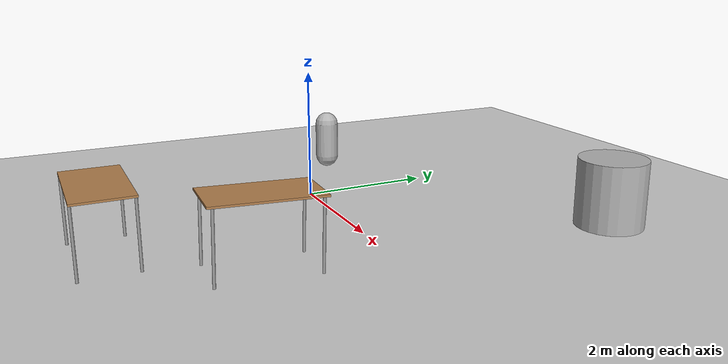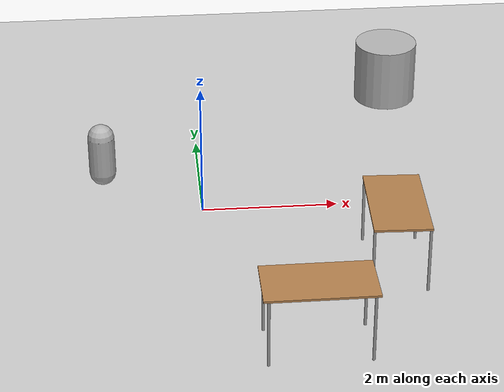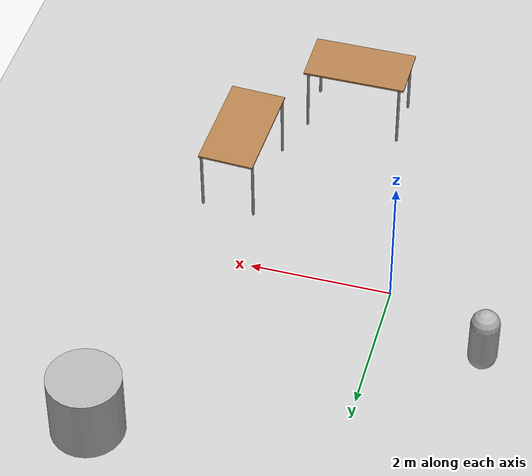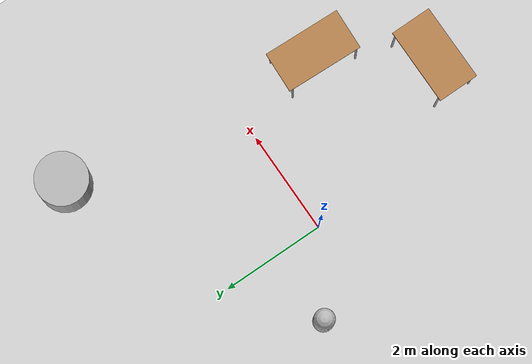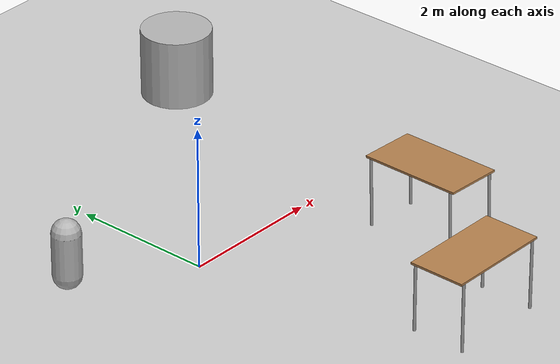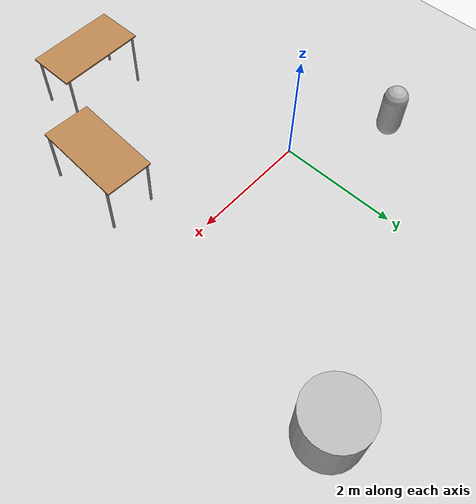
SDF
<sdf version="1.10">
 <world name="empty">
  <physics name="1ms" type="ignored">
   <max_step_size>0.001</max_step_size>
   <real_time_factor>1</real_time_factor>
   <real_time_update_rate>1000</real_time_update_rate>
  </physics>
  <plugin name="gz::sim::systems::Physics" filename="gz-sim-physics-system"/>
  <plugin name="gz::sim::systems::UserCommands" filename="gz-sim-user-commands-system"/>
  <plugin name="gz::sim::systems::SceneBroadcaster" filename="gz-sim-scene-broadcaster-system"/>
  <plugin name="gz::sim::systems::Contact" filename="gz-sim-contact-system"/>
  <gravity>0 0 -9.8000000000000007</gravity>
  <magnetic_field>5.5644999999999998e-06 2.2875799999999999e-05 -4.2388400000000002e-05</magnetic_field>
  <atmosphere type="adiabatic"/>
  <scene>
   <ambient>0.400000006 0.400000006 0.400000006 1</ambient>
   <background>0.699999988 0.699999988 0.699999988 1</background>
   <shadows>true</shadows>
  </scene>
  <model name="ground_plane">
   <static>true</static>
   <link name="link">
    <collision name="collision">
     <geometry><plane><normal>0 0 1</normal><size>100 100</size></plane></geometry>
    </collision>
    <visual name="visual">
     <geometry><plane><normal>0 0 1</normal><size>100 100</size></plane></geometry>
     <material>
      <ambient>0.800000012 0.800000012 0.800000012 1</ambient>
      <diffuse>0.800000012 0.800000012 0.800000012 1</diffuse>
      <specular>0.800000012 0.800000012 0.800000012 1</specular>
     </material>
    </visual>
    <inertial>
     <mass>1</mass>
     <inertia><ixx>1</ixx><ixy>0</ixy><ixz>0</ixz><iyy>1</iyy><iyz>0</iyz><izz>1</izz></inertia>
    </inertial>
   </link>
  </model>
  <model name="Table">
   <static>true</static>
   <link name="link">
    <collision name="surface">
     <pose>0 0 1 0 0 0</pose>
     <geometry><box><size>1.5 0.80000000000000004 0.029999999999999999</size></box></geometry>
     <surface><friction><ode><mu>0.59999999999999998</mu><mu2>0.59999999999999998</mu2></ode></friction></surface>
    </collision>
    <visual name="visual1">
     <pose>0 0 1 0 0 0</pose>
     <geometry><box><size>1.5 0.80000000000000004 0.029999999999999999</size></box></geometry>
     <material>
      <diffuse>1 1 1 1</diffuse>
      <script><uri>file://media/materials/scripts/gazebo.material</uri><name>Gazebo/Wood</name></script>
      <pbr>
       <metal>
        <albedo_map>https://fuel.gazebosim.org/1.0/openrobotics/models/table/4/files/Table_Diffuse.jpg</albedo_map>
       </metal>
      </pbr>
     </material>
    </visual>
    <collision name="front_left_leg">
     <pose>0.68000000000000005 0.38 0.5 0 0 0</pose>
     <geometry><cylinder><radius>0.02</radius><length>1</length></cylinder></geometry>
    </collision>
    <visual name="front_left_leg">
     <pose>0.68000000000000005 0.38 0.5 0 0 0</pose>
     <geometry><cylinder><radius>0.02</radius><length>1</length></cylinder></geometry>
     <material>
      <diffuse>0.5 0.5 0.5 1</diffuse>
      <script><uri>file://media/materials/scripts/gazebo.material</uri><name>Gazebo/Grey</name></script>
     </material>
    </visual>
    <collision name="front_right_leg">
     <pose>0.68000000000000005 -0.38 0.5 0 0 0</pose>
     <geometry><cylinder><radius>0.02</radius><length>1</length></cylinder></geometry>
    </collision>
    <visual name="front_right_leg">
     <pose>0.68000000000000005 -0.38 0.5 0 0 0</pose>
     <geometry><cylinder><radius>0.02</radius><length>1</length></cylinder></geometry>
     <material>
      <diffuse>0.5 0.5 0.5 1</diffuse>
      <script><uri>file://media/materials/scripts/gazebo.material</uri><name>Gazebo/Grey</name></script>
     </material>
    </visual>
    <collision name="back_right_leg">
     <pose>-0.68000000000000005 -0.38 0.5 0 0 0</pose>
     <geometry><cylinder><radius>0.02</radius><length>1</length></cylinder></geometry>
    </collision>
    <visual name="back_right_leg">
     <pose>-0.68000000000000005 -0.38 0.5 0 0 0</pose>
     <geometry><cylinder><radius>0.02</radius><length>1</length></cylinder></geometry>
     <material>
      <diffuse>0.5 0.5 0.5 1</diffuse>
      <script><uri>file://media/materials/scripts/gazebo.material</uri><name>Gazebo/Grey</name></script>
     </material>
    </visual>
    <collision name="back_left_leg">
     <pose>-0.68000000000000005 0.38 0.5 0 0 0</pose>
     <geometry><cylinder><radius>0.02</radius><length>1</length></cylinder></geometry>
    </collision>
    <visual name="back_left_leg">
     <pose>-0.68000000000000005 0.38 0.5 0 0 0</pose>
     <geometry><cylinder><radius>0.02</radius><length>1</length></cylinder></geometry>
     <material>
      <diffuse>0.5 0.5 0.5 1</diffuse>
      <script><uri>file://media/materials/scripts/gazebo.material</uri><name>Gazebo/Grey</name></script>
     </material>
    </visual>
    <inertial>
     <mass>1</mass>
     <inertia><ixx>1</ixx><ixy>0</ixy><ixz>0</ixz><iyy>1</iyy><iyz>0</iyz><izz>1</izz></inertia>
    </inertial>
   </link>
   <pose>2.598067045211792 -1.6884642839431763 0.016687612980604172 -0.0013252102516104192 0.029713598364492423 1.5262199866417943</pose>
  </model>
  <model name="Table_0">
   <static>true</static>
   <link name="link">
    <collision name="surface">
     <pose>0 0 1 0 0 0</pose>
     <geometry><box><size>1.5 0.80000000000000004 0.029999999999999999</size></box></geometry>
     <surface><friction><ode><mu>0.59999999999999998</mu><mu2>0.59999999999999998</mu2></ode></friction></surface>
    </collision>
    <visual name="visual1">
     <pose>0 0 1 0 0 0</pose>
     <geometry><box><size>1.5 0.80000000000000004 0.029999999999999999</size></box></geometry>
     <material>
      <diffuse>1 1 1 1</diffuse>
      <script><uri>file://media/materials/scripts/gazebo.material</uri><name>Gazebo/Wood</name></script>
      <pbr>
       <metal>
        <albedo_map>https://fuel.gazebosim.org/1.0/openrobotics/models/table/4/files/Table_Diffuse.jpg</albedo_map>
       </metal>
      </pbr>
     </material>
    </visual>
    <collision name="front_left_leg">
     <pose>0.68000000000000005 0.38 0.5 0 0 0</pose>
     <geometry><cylinder><radius>0.02</radius><length>1</length></cylinder></geometry>
    </collision>
    <visual name="front_left_leg">
     <pose>0.68000000000000005 0.38 0.5 0 0 0</pose>
     <geometry><cylinder><radius>0.02</radius><length>1</length></cylinder></geometry>
     <material>
      <diffuse>0.5 0.5 0.5 1</diffuse>
      <script><uri>file://media/materials/scripts/gazebo.material</uri><name>Gazebo/Grey</name></script>
     </material>
    </visual>
    <collision name="front_right_leg">
     <pose>0.68000000000000005 -0.38 0.5 0 0 0</pose>
     <geometry><cylinder><radius>0.02</radius><length>1</length></cylinder></geometry>
    </collision>
    <visual name="front_right_leg">
     <pose>0.68000000000000005 -0.38 0.5 0 0 0</pose>
     <geometry><cylinder><radius>0.02</radius><length>1</length></cylinder></geometry>
     <material>
      <diffuse>0.5 0.5 0.5 1</diffuse>
      <script><uri>file://media/materials/scripts/gazebo.material</uri><name>Gazebo/Grey</name></script>
     </material>
    </visual>
    <collision name="back_right_leg">
     <pose>-0.68000000000000005 -0.38 0.5 0 0 0</pose>
     <geometry><cylinder><radius>0.02</radius><length>1</length></cylinder></geometry>
    </collision>
    <visual name="back_right_leg">
     <pose>-0.68000000000000005 -0.38 0.5 0 0 0</pose>
     <geometry><cylinder><radius>0.02</radius><length>1</length></cylinder></geometry>
     <material>
      <diffuse>0.5 0.5 0.5 1</diffuse>
      <script><uri>file://media/materials/scripts/gazebo.material</uri><name>Gazebo/Grey</name></script>
     </material>
    </visual>
    <collision name="back_left_leg">
     <pose>-0.68000000000000005 0.38 0.5 0 0 0</pose>
     <geometry><cylinder><radius>0.02</radius><length>1</length></cylinder></geometry>
    </collision>
    <visual name="back_left_leg">
     <pose>-0.68000000000000005 0.38 0.5 0 0 0</pose>
     <geometry><cylinder><radius>0.02</radius><length>1</length></cylinder></geometry>
     <material>
      <diffuse>0.5 0.5 0.5 1</diffuse>
      <script><uri>file://media/materials/scripts/gazebo.material</uri><name>Gazebo/Grey</name></script>
     </material>
    </visual>
    <inertial>
     <mass>1</mass>
     <inertia><ixx>1</ixx><ixy>0</ixy><ixz>0</ixz><iyy>1</iyy><iyz>0</iyz><izz>1</izz></inertia>
    </inertial>
   </link>
   <pose>1.3031815010193886 -3.4178258986267211 0 0 0 0</pose>
  </model>
  <model name="capsule">
   <pose>-1.4688012074206802 0.91733916155330253 0.499999999902001 0 0 0</pose>
   <link name="capsule_link">
    <inertial>
     <inertia>
      <ixx>0.074153999999999998</ixx>
      <ixy>0</ixy>
      <ixz>0</ixz>
      <iyy>0.074153999999999998</iyy>
      <iyz>0</iyz>
      <izz>0.018769000000000001</izz>
     </inertia>
     <mass>1</mass>
    </inertial>
    <collision name="capsule_collision">
     <geometry>
      <capsule><radius>0.20000000000000001</radius><length>0.59999999999999998</length></capsule>
     </geometry>
    </collision>
    <visual name="capsule_visual">
     <geometry>
      <capsule><radius>0.20000000000000001</radius><length>0.59999999999999998</length></capsule>
     </geometry>
     <material>
      <ambient>0.300000012 0.300000012 0.300000012 1</ambient>
      <diffuse>0.699999988 0.699999988 0.699999988 1</diffuse>
      <specular>1 1 1 1</specular>
     </material>
    </visual>
   </link>
   <static>false</static>
  </model>
  <model name="cylinder">
   <pose>3.2496589196549035 3.3598458828885134 0.49999942638036005 -8.380160547862213e-20 -2.3002295257942879e-19 -9.6206236827094021e-22</pose>
   <link name="cylinder_link">
    <inertial>
     <inertia>
      <ixx>0.14580000000000001</ixx>
      <ixy>0</ixy>
      <ixz>0</ixz>
      <iyy>0.14580000000000001</iyy>
      <iyz>0</iyz>
      <izz>0.125</izz>
     </inertia>
     <mass>1</mass>
    </inertial>
    <collision name="cylinder_collision">
     <geometry><cylinder><radius>0.5</radius><length>1</length></cylinder></geometry>
    </collision>
    <visual name="cylinder_visual">
     <geometry><cylinder><radius>0.5</radius><length>1</length></cylinder></geometry>
     <material>
      <ambient>0.300000012 0.300000012 0.300000012 1</ambient>
      <diffuse>0.699999988 0.699999988 0.699999988 1</diffuse>
      <specular>1 1 1 1</specular>
     </material>
    </visual>
   </link>
   <static>false</static>
  </model>
  <light name="sun" type="directional">
   <pose>0 0 10 0 0 0</pose>
   <intensity>1</intensity>
   <direction>-0.5 0.10000000000000001 -0.90000000000000002</direction>
   <diffuse>0.800000012 0.800000012 0.800000012 1</diffuse>
   <specular>0.200000003 0.200000003 0.200000003 1</specular>
   <attenuation>
    <range>1000</range>
    <linear>0.01</linear>
    <constant>0.90000000000000002</constant>
    <quadratic>0.001</quadratic>
   </attenuation>
   <spot><inner_angle>0</inner_angle><outer_angle>0</outer_angle><falloff>0</falloff></spot>
  </light>
 </world>
</sdf>
